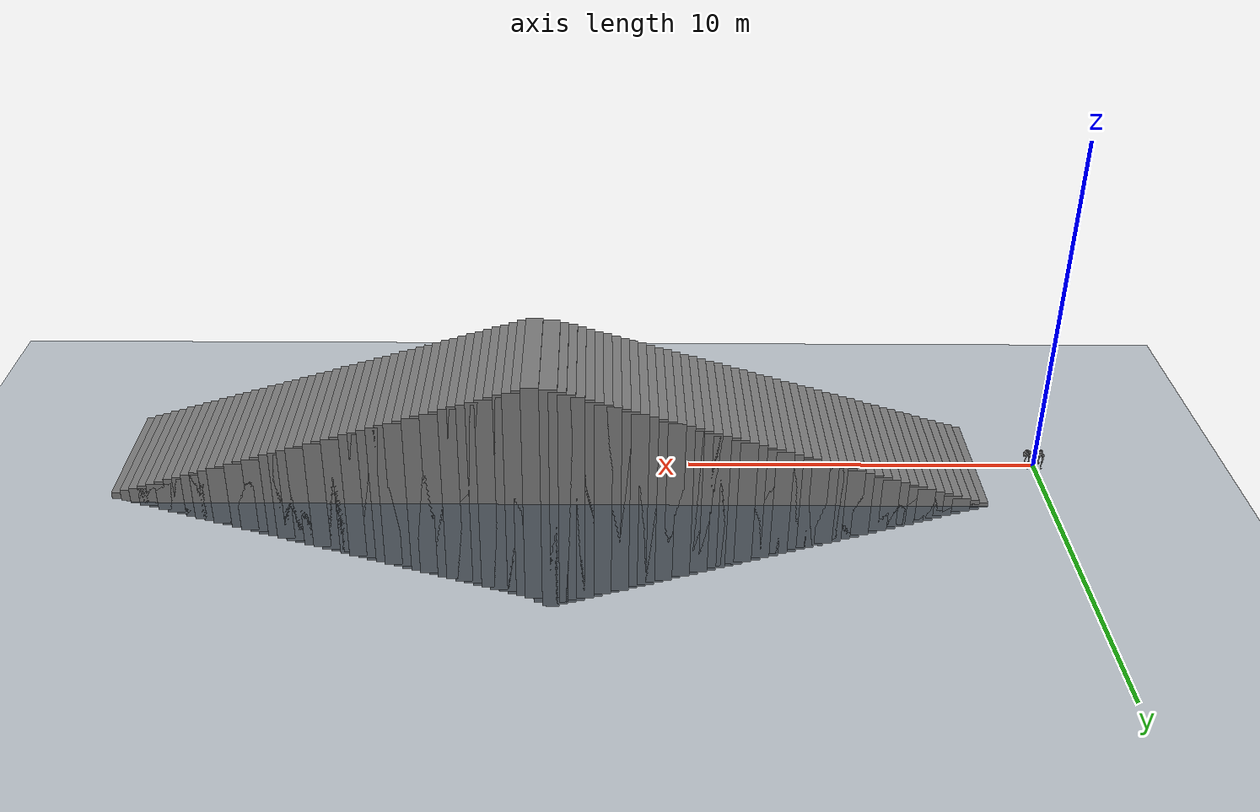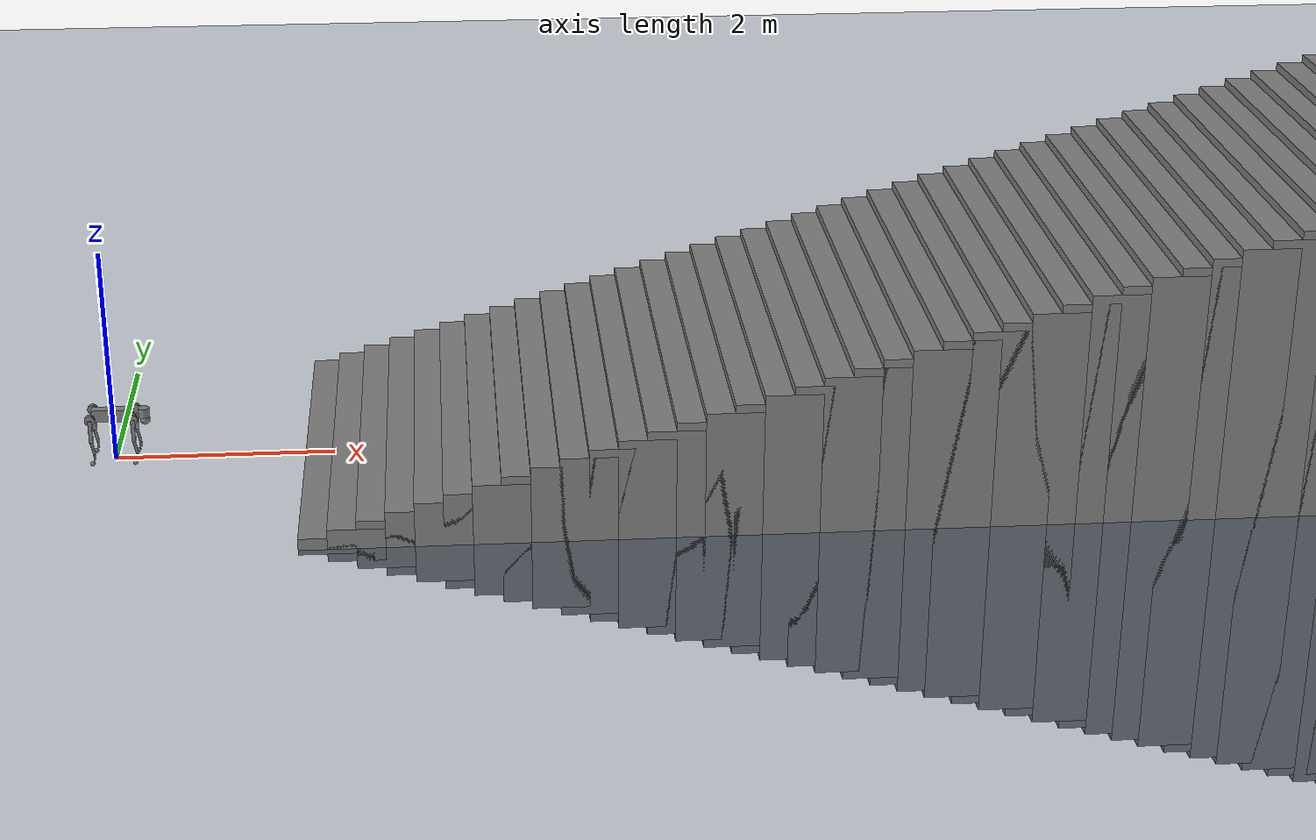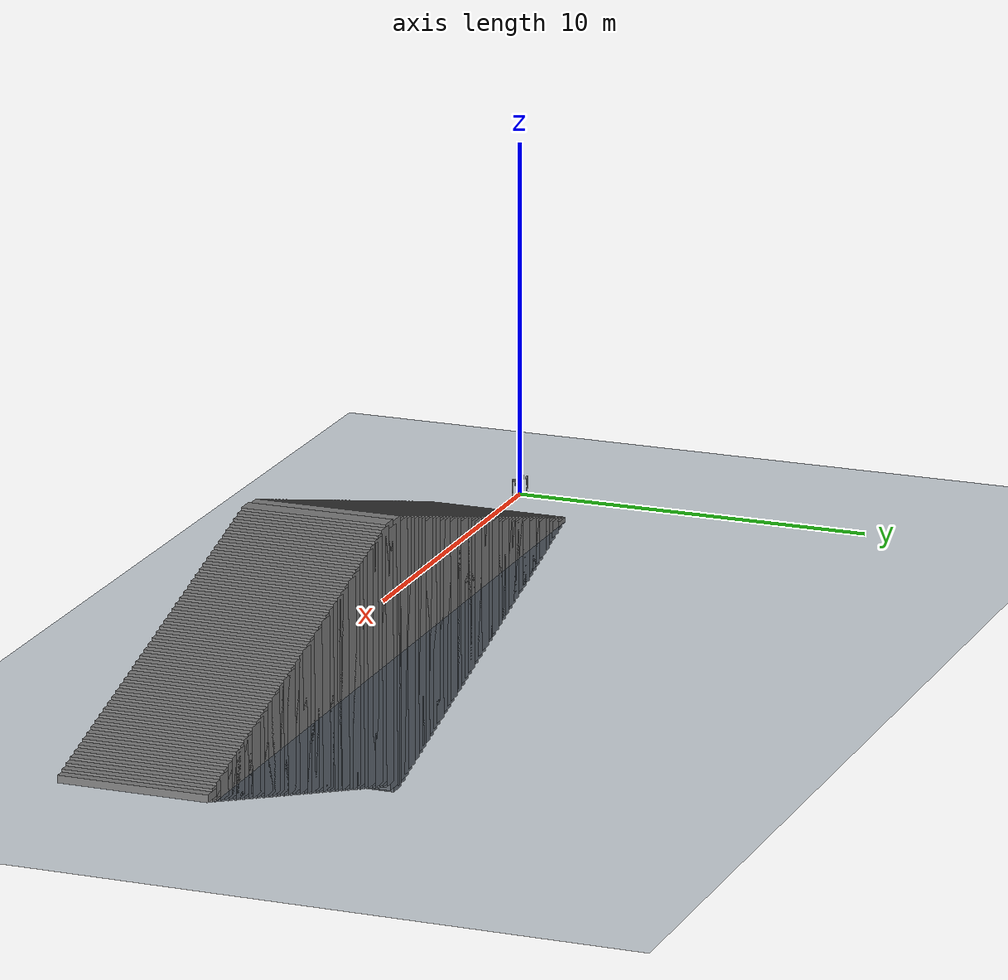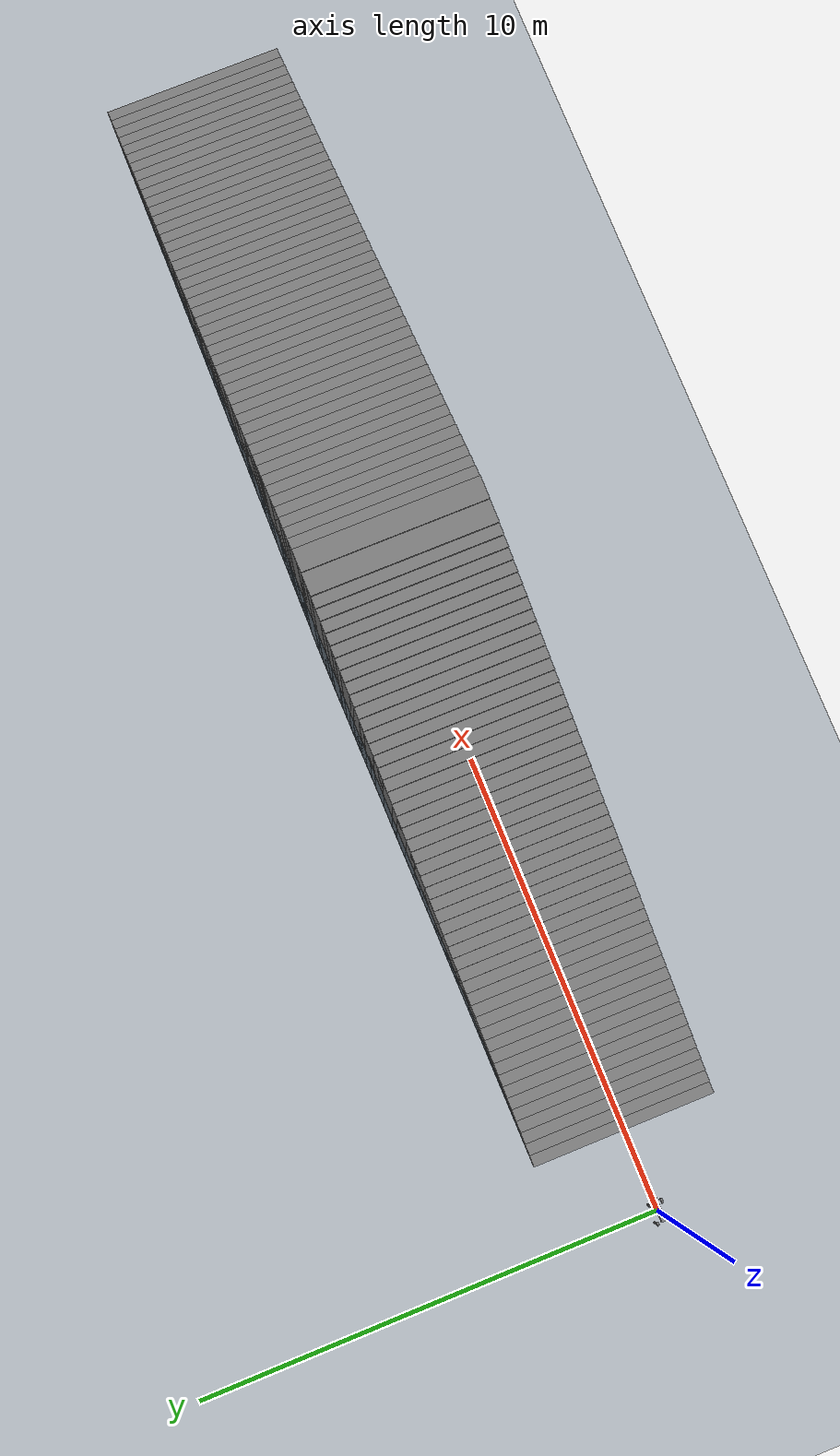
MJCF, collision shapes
<mujoco model="smaller stairway to heaven">
  <include file="go2.xml"/>

  <statistic center="0 0 0.1" extent="0.8"/>

  <visual>
    <headlight diffuse="0.6 0.6 0.6" ambient="0.3 0.3 0.3" specular="0 0 0"/>
    <rgba haze="0.15 0.25 0.35 1"/>
    <global azimuth="-130" elevation="-20"/>
  </visual>

  <asset>
    <texture type="skybox" builtin="gradient" rgb1="0.3 0.5 0.7" rgb2="0 0 0" width="512" height="3072"/>
    <texture type="2d" name="groundplane" builtin="checker" mark="edge" rgb1="0.2 0.3 0.4" rgb2="0.1 0.2 0.3"
      markrgb="0.8 0.8 0.8" width="300" height="300"/>
    <material name="groundplane" texture="groundplane" texuniform="true" texrepeat="5 5" reflectance="0.2"/>
  </asset>

  <worldbody>
    <light pos="0 0 1.5" dir="0 0 -1" directional="true"/>
    <geom name="floor" size="0 0 0.05" type="plane" material="groundplane"/>

    <!-- Bumpy wumpys -->

    <!-- The go2 ascends the stairway to heaven, -->
    <geom pos="2.00 0.0 0.02" type="box" size="0.25 2.0 0.075" quat="1.0 0 0 0"/>
    <geom pos="2.25 0.0 0.02" type="box" size="0.25 2.0 0.15"  quat="1.0 0 0 0"/>
    <geom pos="2.50 0.0 0.02" type="box" size="0.25 2.0 0.225" quat="1.0 0 0 0"/>
    <geom pos="2.75 0.0 0.02" type="box" size="0.25 2.0 0.30"  quat="1.0 0 0 0"/>
    <geom pos="3.00 0.0 0.02" type="box" size="0.25 2.0 0.375" quat="1.0 0 0 0"/>
    <geom pos="3.25 0.0 0.02" type="box" size="0.25 2.0 0.45"  quat="1.0 0 0 0"/>
    <geom pos="3.50 0.0 0.02" type="box" size="0.25 2.0 0.525" quat="1.0 0 0 0"/>
    <geom pos="3.75 0.0 0.02" type="box" size="0.25 2.0 0.600" quat="1.0 0 0 0"/>
    <geom pos="4.00 0.0 0.02" type="box" size="0.25 2.0 0.675" quat="1.0 0 0 0"/>
    <geom pos="4.25 0.0 0.02" type="box" size="0.25 2.0 0.75"  quat="1.0 0 0 0"/>
    <geom pos="4.50 0.0 0.02" type="box" size="0.25 2.0 0.825" quat="1.0 0 0 0"/>
    <geom pos="4.75 0.0 0.02" type="box" size="0.25 2.0 0.90"  quat="1.0 0 0 0"/>
    <geom pos="5.00 0.0 0.02" type="box" size="0.25 2.0 0.975" quat="1.0 0 0 0"/>
    <geom pos="5.25 0.0 0.02" type="box" size="0.25 2.0 1.05"  quat="1.0 0 0 0"/>
    <geom pos="5.50 0.0 0.02" type="box" size="0.25 2.0 1.125" quat="1.0 0 0 0"/>
    <geom pos="5.75 0.0 0.02" type="box" size="0.25 2.0 1.2"  quat="1.0 0 0 0"/>
    <geom pos="6.00 0.0 0.02" type="box" size="0.25 2.0 1.275" quat="1.0 0 0 0"/>
    <geom pos="6.25 0.0 0.02" type="box" size="0.25 2.0 1.35"  quat="1.0 0 0 0"/>
    <geom pos="6.50 0.0 0.02" type="box" size="0.25 2.0 1.425" quat="1.0 0 0 0"/>
    <geom pos="6.75 0.0 0.02" type="box" size="0.25 2.0 1.5"  quat="1.0 0 0 0"/>
    <geom pos="7.00 0.0 0.02" type="box" size="0.25 2.0 1.575" quat="1.0 0 0 0"/>
    <geom pos="7.25 0.0 0.02" type="box" size="0.25 2.0 1.65"  quat="1.0 0 0 0"/>
    <geom pos="7.50 0.0 0.02" type="box" size="0.25 2.0 1.725" quat="1.0 0 0 0"/>
    <geom pos="7.75 0.0 0.02" type="box" size="0.25 2.0 1.8"  quat="1.0 0 0 0"/>
    <geom pos="8.00 0.0 0.02" type="box" size="0.25 2.0 1.875" quat="1.0 0 0 0"/>
    <geom pos="8.25 0.0 0.02" type="box" size="0.25 2.0 1.95"  quat="1.0 0 0 0"/>
    <geom pos="8.50 0.0 0.02" type="box" size="0.25 2.0 2.025" quat="1.0 0 0 0"/>
    <geom pos="8.75 0.0 0.02" type="box" size="0.25 2.0 2.1"   quat="1.0 0 0 0"/>
    <geom pos="9.00 0.0 0.02" type="box" size="0.25 2.0 2.175" quat="1.0 0 0 0"/>
    <geom pos="9.25 0.0 0.02" type="box" size="0.25 2.0 2.25"  quat="1.0 0 0 0"/>
    <geom pos="9.50 0.0 0.02" type="box" size="0.25 2.0 2.325" quat="1.0 0 0 0"/>
    <geom pos="9.75 0.0 0.02" type="box" size="0.25 2.0 2.4"   quat="1.0 0 0 0"/>
    <geom pos="10.00 0.0 0.02" type="box" size="0.25 2.0 2.475" quat="1.0 0 0 0"/>
    <geom pos="10.25 0.0 0.02" type="box" size="0.25 2.0 2.55"  quat="1.0 0 0 0"/>
    <geom pos="10.50 0.0 0.02" type="box" size="0.25 2.0 2.625" quat="1.0 0 0 0"/>
    <geom pos="10.75 0.0 0.02" type="box" size="0.25 2.0 2.7"   quat="1.0 0 0 0"/>
    <geom pos="11.00 0.0 0.02" type="box" size="0.25 2.0 2.775" quat="1.0 0 0 0"/>
    <geom pos="11.25 0.0 0.02" type="box" size="0.25 2.0 2.85"  quat="1.0 0 0 0"/>
    <geom pos="11.50 0.0 0.02" type="box" size="0.25 2.0 2.925" quat="1.0 0 0 0"/>
    <geom pos="11.75 0.0 0.02" type="box" size="0.25 2.0 3.0"   quat="1.0 0 0 0"/>
    <geom pos="12.00 0.0 0.02" type="box" size="0.25 2.0 3.075" quat="1.0 0 0 0"/>
    <geom pos="12.25 0.0 0.02" type="box" size="0.25 2.0 3.15"  quat="1.0 0 0 0"/>
    <geom pos="12.50 0.0 0.02" type="box" size="0.25 2.0 3.225" quat="1.0 0 0 0"/>
    <geom pos="12.75 0.0 0.02" type="box" size="0.25 2.0 3.30"  quat="1.0 0 0 0"/>
    <geom pos="13.00 0.0 0.02" type="box" size="0.25 2.0 3.375" quat="1.0 0 0 0"/>
    <geom pos="13.25 0.0 0.02" type="box" size="0.25 2.0 3.45"  quat="1.0 0 0 0"/>
    <geom pos="13.50 0.0 0.02" type="box" size="0.25 2.0 3.525" quat="1.0 0 0 0"/>
    <geom pos="13.75 0.0 0.02" type="box" size="0.25 2.0 3.60"  quat="1.0 0 0 0"/>
    <geom pos="14.00 0.0 0.02" type="box" size="0.25 2.0 3.675" quat="1.0 0 0 0"/>
    <geom pos="14.25 0.0 0.02" type="box" size="0.25 2.0 3.55"  quat="1.0 0 0 0"/>

    <!-- Yet heaven refuses the creation of man. -->

    <!-- Thus, he falls back to Earth. -->
    <geom pos="14.50 0.0 0.2" type="box" size="0.25 2.0 3.55"  quat="1.0 0 0 0"/>
    <geom pos="14.75 0.0 0.2" type="box" size="0.25 2.0 3.475" quat="1.0 0 0 0"/>
    <geom pos="15.00 0.0 0.2" type="box" size="0.25 2.0 3.40"  quat="1.0 0 0 0"/>
    <geom pos="15.25 0.0 0.2" type="box" size="0.25 2.0 3.325" quat="1.0 0 0 0"/>
    <geom pos="15.50 0.0 0.2" type="box" size="0.25 2.0 3.25"  quat="1.0 0 0 0"/>
    <geom pos="15.75 0.0 0.2" type="box" size="0.25 2.0 3.175" quat="1.0 0 0 0"/>
    <geom pos="16.00 0.0 0.2" type="box" size="0.25 2.0 3.10"  quat="1.0 0 0 0"/>
    <geom pos="16.25 0.0 0.2" type="box" size="0.25 2.0 3.025" quat="1.0 0 0 0"/>
    <geom pos="16.50 0.0 0.2" type="box" size="0.25 2.0 2.95"  quat="1.0 0 0 0"/>
    <geom pos="16.75 0.0 0.2" type="box" size="0.25 2.0 2.875" quat="1.0 0 0 0"/>
    <geom pos="17.00 0.0 0.2" type="box" size="0.25 2.0 2.80"  quat="1.0 0 0 0"/>
    <geom pos="17.25 0.0 0.2" type="box" size="0.25 2.0 2.725" quat="1.0 0 0 0"/>
    <geom pos="17.50 0.0 0.2" type="box" size="0.25 2.0 2.65"  quat="1.0 0 0 0"/>
    <geom pos="17.75 0.0 0.2" type="box" size="0.25 2.0 2.575" quat="1.0 0 0 0"/>
    <geom pos="18.00 0.0 0.2" type="box" size="0.25 2.0 2.50"  quat="1.0 0 0 0"/>
    <geom pos="18.25 0.0 0.2" type="box" size="0.25 2.0 2.425" quat="1.0 0 0 0"/>
    <geom pos="18.50 0.0 0.2" type="box" size="0.25 2.0 2.35"  quat="1.0 0 0 0"/>
    <geom pos="18.75 0.0 0.2" type="box" size="0.25 2.0 2.275" quat="1.0 0 0 0"/>
    <geom pos="19.00 0.0 0.2" type="box" size="0.25 2.0 2.20"  quat="1.0 0 0 0"/>
    <geom pos="19.25 0.0 0.2" type="box" size="0.25 2.0 2.125" quat="1.0 0 0 0"/>
    <geom pos="19.50 0.0 0.2" type="box" size="0.25 2.0 2.05"  quat="1.0 0 0 0"/>
    <geom pos="19.75 0.0 0.2" type="box" size="0.25 2.0 1.975" quat="1.0 0 0 0"/>
    <geom pos="20.00 0.0 0.2" type="box" size="0.25 2.0 1.90"  quat="1.0 0 0 0"/>
    <geom pos="20.25 0.0 0.2" type="box" size="0.25 2.0 1.825" quat="1.0 0 0 0"/>
    <geom pos="20.50 0.0 0.2" type="box" size="0.25 2.0 1.75"  quat="1.0 0 0 0"/>
    <geom pos="20.75 0.0 0.2" type="box" size="0.25 2.0 1.675" quat="1.0 0 0 0"/>
    <geom pos="21.00 0.0 0.2" type="box" size="0.25 2.0 1.60"  quat="1.0 0 0 0"/>
    <geom pos="21.25 0.0 0.2" type="box" size="0.25 2.0 1.525" quat="1.0 0 0 0"/>
    <geom pos="21.50 0.0 0.2" type="box" size="0.25 2.0 1.45"  quat="1.0 0 0 0"/>
    <geom pos="21.75 0.0 0.2" type="box" size="0.25 2.0 1.375" quat="1.0 0 0 0"/>
    <geom pos="22.00 0.0 0.2" type="box" size="0.25 2.0 1.30"  quat="1.0 0 0 0"/>
    <geom pos="22.25 0.0 0.2" type="box" size="0.25 2.0 1.225" quat="1.0 0 0 0"/>
    <geom pos="22.50 0.0 0.2" type="box" size="0.25 2.0 1.15"  quat="1.0 0 0 0"/>
    <geom pos="22.75 0.0 0.2" type="box" size="0.25 2.0 1.075" quat="1.0 0 0 0"/>
    <geom pos="23.00 0.0 0.2" type="box" size="0.25 2.0 1.00"  quat="1.0 0 0 0"/>
    <geom pos="23.25 0.0 0.2" type="box" size="0.25 2.0 0.925" quat="1.0 0 0 0"/>
    <geom pos="23.50 0.0 0.2" type="box" size="0.25 2.0 0.85"  quat="1.0 0 0 0"/>
    <geom pos="23.75 0.0 0.2" type="box" size="0.25 2.0 0.775" quat="1.0 0 0 0"/>
    <geom pos="24.00 0.0 0.2" type="box" size="0.25 2.0 0.70"  quat="1.0 0 0 0"/>
    <geom pos="24.25 0.0 0.2" type="box" size="0.25 2.0 0.625" quat="1.0 0 0 0"/>
    <geom pos="24.50 0.0 0.2" type="box" size="0.25 2.0 0.55"  quat="1.0 0 0 0"/>
    <geom pos="24.75 0.0 0.2" type="box" size="0.25 2.0 0.475" quat="1.0 0 0 0"/>
    <geom pos="25.00 0.0 0.2" type="box" size="0.25 2.0 0.40"  quat="1.0 0 0 0"/>
    <geom pos="25.25 0.0 0.2" type="box" size="0.25 2.0 0.325" quat="1.0 0 0 0"/>
    <geom pos="25.50 0.0 0.2" type="box" size="0.25 2.0 0.25"  quat="1.0 0 0 0"/>
    <geom pos="25.75 0.0 0.2" type="box" size="0.25 2.0 0.175" quat="1.0 0 0 0"/>
    <geom pos="26.00 0.0 0.2" type="box" size="0.25 2.0 0.10"  quat="1.0 0 0 0"/>

  </worldbody>
</mujoco>

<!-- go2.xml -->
<mujoco model="go2">
  <compiler angle="radian" meshdir="assets" autolimits="true" />

  <option cone="elliptic" impratio="100" />

  <default>
    <default class="go2">
      <geom friction="0.4" margin="0.001" condim="1"/>
      <joint axis="0 1 0" damping="0.1" armature="0.01" frictionloss="0.2"/>
      <motor ctrlrange="-23.7 23.7"/>
      <default class="abduction">
        <joint axis="1 0 0" range="-1.0472 1.0472"/>
      </default>
      <default class="hip">
        <default class="front_hip">
          <joint range="-1.5708 3.4907"/>
        </default>
        <default class="back_hip">
          <joint range="-0.5236 4.5379"/>
        </default>
      </default>
      <default class="knee">
        <joint range="-2.7227 -0.83776"/>
        <motor ctrlrange="-45.43 45.43"/>
      </default>
      <default class="visual">
        <geom type="mesh" contype="0" conaffinity="0" group="2"/>
      </default>
      <default class="collision">
        <geom group="3"/>
        <default class="foot">

          <!-- DEFAULT FRICTION (UNITREE) -->

          <!-- DEFAULT FRICTION (MUJOCO) -->

          <!-- SELECTED FRICTION (USER) -->
          <geom size="0.022" pos="-0.002 0 -0.213" priority="1" condim="6"
            friction="0.7 0.02 0.01"/>

        </default>
      </default>
    </default>
  </default>

  <asset>
    <material name="metal" rgba=".9 .95 .95 1" />
    <material name="black" rgba="0 0 0 1" />
    <material name="white" rgba="1 1 1 1" />
    <material name="gray" rgba="0.671705 0.692426 0.774270 1" />

    <mesh file="base_0.obj" />
    <mesh file="base_1.obj" />
    <mesh file="base_2.obj" />
    <mesh file="base_3.obj" />
    <mesh file="base_4.obj" />
    <mesh file="hip_0.obj" />
    <mesh file="hip_1.obj" />
    <mesh file="thigh_0.obj" />
    <mesh file="thigh_1.obj" />
    <mesh file="thigh_mirror_0.obj" />
    <mesh file="thigh_mirror_1.obj" />
    <mesh file="calf_0.obj" />
    <mesh file="calf_1.obj" />
    <mesh file="calf_mirror_0.obj" />
    <mesh file="calf_mirror_1.obj" />
    <mesh file="foot.obj" />
  </asset>

  <worldbody>
    <body name="base_link" pos="0 0 0.445" childclass="go2">
      <inertial pos="0.021112 0 -0.005366" quat="-0.000543471 0.713435 -0.00173769 0.700719"
        mass="6.921"
        diaginertia="0.107027 0.0980771 0.0244531" />
      <freejoint />
      <geom mesh="base_0" material="black" class="visual" />
      <geom mesh="base_1" material="black" class="visual" />
      <geom mesh="base_2" material="black" class="visual" />
      <geom mesh="base_3" material="white" class="visual" />
      <geom mesh="base_4" material="gray" class="visual" />
      <geom size="0.1881 0.04675 0.057" type="box" class="collision" />
      <geom size="0.05 0.045" pos="0.285 0 0.01" type="cylinder" class="collision" />
      <geom size="0.047" pos="0.293 0 -0.06" class="collision" />
      <site name="imu" pos="-0.02557 0 0.04232" />
      <body name="FL_hip" pos="0.1934 0.0465 0">
        <inertial pos="-0.0054 0.00194 -0.000105" quat="0.497014 0.499245 0.505462 0.498237"
          mass="0.678"
          diaginertia="0.00088403 0.000596003 0.000479967" />
        <joint name="FL_hip_joint" class="abduction" />
        <geom mesh="hip_0" material="metal" class="visual" />
        <geom mesh="hip_1" material="gray" class="visual" />
        <geom size="0.046 0.02" pos="0 0.08 0" quat="1 1 0 0" type="cylinder" class="collision" />
        <body name="FL_thigh" pos="0 0.0955 0">
          <inertial pos="-0.00374 -0.0223 -0.0327" quat="0.829533 0.0847635 -0.0200632 0.551623"
            mass="1.152"
            diaginertia="0.00594973 0.00584149 0.000878787" />
          <joint name="FL_thigh_joint" class="front_hip" />
          <geom mesh="thigh_0" material="metal" class="visual" />
          <geom mesh="thigh_1" material="gray" class="visual" />
          <geom size="0.1065 0.01225 0.017" pos="0 0 -0.1065" quat="0.707107 0 0.707107 0"
            type="box" class="collision" />
          <body name="FL_calf" pos="0 0 -0.213">
            <inertial pos="0.00629595 -0.000622121 -0.141417"
              quat="0.710672 0.00154099 -0.00450087 0.703508"
              mass="0.241352" diaginertia="0.0014901 0.00146356 5.31397e-05" />
            <joint name="FL_calf_joint" class="knee" />
            <geom mesh="calf_0" material="gray" class="visual" />
            <geom mesh="calf_1" material="black" class="visual" />
            <geom size="0.012 0.06" pos="0.008 0 -0.06" quat="0.994493 0 -0.104807 0"
              type="cylinder" class="collision" />
            <geom size="0.011 0.0325" pos="0.02 0 -0.148" quat="0.999688 0 0.0249974 0"
              type="cylinder" class="collision" />
            <geom pos="0 0 -0.213" mesh="foot" class="visual" material="black" />
            <geom name="FL" class="foot" />
            <body name="FL_foot" pos="0 0 -0.213" />
          </body>
        </body>
      </body>
      <body name="FR_hip" pos="0.1934 -0.0465 0">
        <inertial pos="-0.0054 -0.00194 -0.000105" quat="0.498237 0.505462 0.499245 0.497014"
          mass="0.678"
          diaginertia="0.00088403 0.000596003 0.000479967" />
        <joint name="FR_hip_joint" class="abduction" />
        <geom mesh="hip_0" material="metal" class="visual" quat="4.63268e-05 1 0 0" />
        <geom mesh="hip_1" material="gray" class="visual" quat="4.63268e-05 1 0 0" />
        <geom size="0.046 0.02" pos="0 -0.08 0" quat="0.707107 0.707107 0 0" type="cylinder"
          class="collision" />
        <body name="FR_thigh" pos="0 -0.0955 0">
          <inertial pos="-0.00374 0.0223 -0.0327" quat="0.551623 -0.0200632 0.0847635 0.829533"
            mass="1.152"
            diaginertia="0.00594973 0.00584149 0.000878787" />
          <joint name="FR_thigh_joint" class="front_hip" />
          <geom mesh="thigh_mirror_0" material="metal" class="visual" />
          <geom mesh="thigh_mirror_1" material="gray" class="visual" />
          <geom size="0.1065 0.01225 0.017" pos="0 0 -0.1065" quat="0.707107 0 0.707107 0"
            type="box" class="collision" />
          <body name="FR_calf" pos="0 0 -0.213">
            <inertial pos="0.00629595 0.000622121 -0.141417"
              quat="0.703508 -0.00450087 0.00154099 0.710672"
              mass="0.241352" diaginertia="0.0014901 0.00146356 5.31397e-05" />
            <joint name="FR_calf_joint" class="knee" />
            <geom mesh="calf_mirror_0" material="gray" class="visual" />
            <geom mesh="calf_mirror_1" material="black" class="visual" />
            <geom size="0.013 0.06" pos="0.01 0 -0.06" quat="0.995004 0 -0.0998334 0"
              type="cylinder" class="collision" />
            <geom size="0.011 0.0325" pos="0.02 0 -0.148" quat="0.999688 0 0.0249974 0"
              type="cylinder" class="collision" />
            <geom pos="0 0 -0.213" mesh="foot" class="visual" material="black" />
            <geom name="FR" class="foot" />
            <body name="FR_foot" pos="0 0 -0.213" />
          </body>
        </body>
      </body>
      <body name="RL_hip" pos="-0.1934 0.0465 0">
        <inertial pos="0.0054 0.00194 -0.000105" quat="0.505462 0.498237 0.497014 0.499245"
          mass="0.678"
          diaginertia="0.00088403 0.000596003 0.000479967" />
        <joint name="RL_hip_joint" class="abduction" />
        <geom mesh="hip_0" material="metal" class="visual" quat="4.63268e-05 0 1 0" />
        <geom mesh="hip_1" material="gray" class="visual" quat="4.63268e-05 0 1 0" />
        <geom size="0.046 0.02" pos="0 0.08 0" quat="0.707107 0.707107 0 0" type="cylinder"
          class="collision" />
        <body name="RL_thigh" pos="0 0.0955 0">
          <inertial pos="-0.00374 -0.0223 -0.0327" quat="0.829533 0.0847635 -0.0200632 0.551623"
            mass="1.152"
            diaginertia="0.00594973 0.00584149 0.000878787" />
          <joint name="RL_thigh_joint" class="back_hip" />
          <geom mesh="thigh_0" material="metal" class="visual" />
          <geom mesh="thigh_1" material="gray" class="visual" />
          <geom size="0.1065 0.01225 0.017" pos="0 0 -0.1065" quat="0.707107 0 0.707107 0"
            type="box" class="collision" />
          <body name="RL_calf" pos="0 0 -0.213">
            <inertial pos="0.00629595 -0.000622121 -0.141417"
              quat="0.710672 0.00154099 -0.00450087 0.703508"
              mass="0.241352" diaginertia="0.0014901 0.00146356 5.31397e-05" />
            <joint name="RL_calf_joint" class="knee" />
            <geom mesh="calf_0" material="gray" class="visual" />
            <geom mesh="calf_1" material="black" class="visual" />
            <geom size="0.013 0.06" pos="0.01 0 -0.06" quat="0.995004 0 -0.0998334 0"
              type="cylinder" class="collision" />
            <geom size="0.011 0.0325" pos="0.02 0 -0.148" quat="0.999688 0 0.0249974 0"
              type="cylinder" class="collision" />
            <geom pos="0 0 -0.213" mesh="foot" class="visual" material="black" />
            <geom name="RL" class="foot" />
            <body name="RL_foot" pos="0 0 -0.213" />
          </body>
        </body>
      </body>
      <body name="RR_hip" pos="-0.1934 -0.0465 0">
        <inertial pos="0.0054 -0.00194 -0.000105" quat="0.499245 0.497014 0.498237 0.505462"
          mass="0.678"
          diaginertia="0.00088403 0.000596003 0.000479967" />
        <joint name="RR_hip_joint" class="abduction" />
        <geom mesh="hip_0" material="metal" class="visual"
          quat="2.14617e-09 4.63268e-05 4.63268e-05 -1" />
        <geom mesh="hip_1" material="gray" class="visual"
          quat="2.14617e-09 4.63268e-05 4.63268e-05 -1" />
        <geom size="0.046 0.02" pos="0 -0.08 0" quat="0.707107 0.707107 0 0" type="cylinder"
          class="collision" />
        <body name="RR_thigh" pos="0 -0.0955 0">
          <inertial pos="-0.00374 0.0223 -0.0327" quat="0.551623 -0.0200632 0.0847635 0.829533"
            mass="1.152"
            diaginertia="0.00594973 0.00584149 0.000878787" />
          <joint name="RR_thigh_joint" class="back_hip" />
          <geom mesh="thigh_mirror_0" material="metal" class="visual" />
          <geom mesh="thigh_mirror_1" material="gray" class="visual" />
          <geom size="0.1065 0.01225 0.017" pos="0 0 -0.1065" quat="0.707107 0 0.707107 0"
            type="box" class="collision" />
          <body name="RR_calf" pos="0 0 -0.213">
            <inertial pos="0.00629595 0.000622121 -0.141417"
              quat="0.703508 -0.00450087 0.00154099 0.710672"
              mass="0.241352" diaginertia="0.0014901 0.00146356 5.31397e-05" />
            <joint name="RR_calf_joint" class="knee" />
            <geom mesh="calf_mirror_0" material="gray" class="visual" />
            <geom mesh="calf_mirror_1" material="black" class="visual" />
            <geom size="0.013 0.06" pos="0.01 0 -0.06" quat="0.995004 0 -0.0998334 0"
              type="cylinder" class="collision" />
            <geom size="0.011 0.0325" pos="0.02 0 -0.148" quat="0.999688 0 0.0249974 0"
              type="cylinder" class="collision" />
            <geom pos="0 0 -0.213" mesh="foot" class="visual" material="black" />
            <geom name="RR" class="foot" />
            <body name="RR_foot" pos="0 0 -0.213" />
          </body>
        </body>
      </body>
    </body>
  </worldbody>

  <actuator>
    <motor class="abduction" name="FL_hip" joint="FL_hip_joint" />
    <motor class="hip" name="FL_thigh" joint="FL_thigh_joint" />
    <motor class="knee" name="FL_calf" joint="FL_calf_joint" />
    <motor class="abduction" name="FR_hip" joint="FR_hip_joint" />
    <motor class="hip" name="FR_thigh" joint="FR_thigh_joint" />
    <motor class="knee" name="FR_calf" joint="FR_calf_joint" />
    <motor class="abduction" name="RL_hip" joint="RL_hip_joint" />
    <motor class="hip" name="RL_thigh" joint="RL_thigh_joint" />
    <motor class="knee" name="RL_calf" joint="RL_calf_joint" />
    <motor class="abduction" name="RR_hip" joint="RR_hip_joint" />
    <motor class="hip" name="RR_thigh" joint="RR_thigh_joint" />
    <motor class="knee" name="RR_calf" joint="RR_calf_joint" />
  </actuator>

  <sensor>
    <jointpos name="FL_hip_pos" joint="FL_hip_joint" />
    <jointpos name="FL_thigh_pos" joint="FL_thigh_joint" />
    <jointpos name="FL_calf_pos" joint="FL_calf_joint" />
    <jointpos name="FR_hip_pos" joint="FR_hip_joint" />
    <jointpos name="FR_thigh_pos" joint="FR_thigh_joint" />
    <jointpos name="FR_calf_pos" joint="FR_calf_joint" />
    <jointpos name="RL_hip_pos" joint="RL_hip_joint" />
    <jointpos name="RL_thigh_pos" joint="RL_thigh_joint" />
    <jointpos name="RL_calf_pos" joint="RL_calf_joint" />
    <jointpos name="RR_hip_pos" joint="RR_hip_joint" />
    <jointpos name="RR_thigh_pos" joint="RR_thigh_joint" />
    <jointpos name="RR_calf_pos" joint="RR_calf_joint" />

    <jointvel name="FL_hip_vel" joint="FL_hip_joint" />
    <jointvel name="FL_thigh_vel" joint="FL_thigh_joint" />
    <jointvel name="FL_calf_vel" joint="FL_calf_joint" />
    <jointvel name="FR_hip_vel" joint="FR_hip_joint" />
    <jointvel name="FR_thigh_vel" joint="FR_thigh_joint" />
    <jointvel name="FR_calf_vel" joint="FR_calf_joint" />
    <jointvel name="RL_hip_vel" joint="RL_hip_joint" />
    <jointvel name="RL_thigh_vel" joint="RL_thigh_joint" />
    <jointvel name="RL_calf_vel" joint="RL_calf_joint" />
    <jointvel name="RR_hip_vel" joint="RR_hip_joint" />
    <jointvel name="RR_thigh_vel" joint="RR_thigh_joint" />
    <jointvel name="RR_calf_vel" joint="RR_calf_joint" />

    <jointactuatorfrc name="FL_hip_torque" joint="FL_hip_joint" noise="0.01" />
    <jointactuatorfrc name="FL_thigh_torque" joint="FL_thigh_joint" noise="0.01" />
    <jointactuatorfrc name="FL_calf_torque" joint="FL_calf_joint" noise="0.01" />
    <jointactuatorfrc name="FR_hip_torque" joint="FR_hip_joint" noise="0.01" />
    <jointactuatorfrc name="FR_thigh_torque" joint="FR_thigh_joint" noise="0.01" />
    <jointactuatorfrc name="FR_calf_torque" joint="FR_calf_joint" noise="0.01" />
    <jointactuatorfrc name="RL_hip_torque" joint="RL_hip_joint" noise="0.01" />
    <jointactuatorfrc name="RL_thigh_torque" joint="RL_thigh_joint" noise="0.01" />
    <jointactuatorfrc name="RL_calf_torque" joint="RL_calf_joint" noise="0.01" />
    <jointactuatorfrc name="RR_hip_torque" joint="RR_hip_joint" noise="0.01" />
    <jointactuatorfrc name="RR_thigh_torque" joint="RR_thigh_joint" noise="0.01" />
    <jointactuatorfrc name="RR_calf_torque" joint="RR_calf_joint" noise="0.01" />

    <framequat name="imu_quat" objtype="site" objname="imu" />
    <gyro name="imu_gyro" site="imu" />
    <accelerometer name="imu_acc" site="imu" />

    <framepos name="frame_pos" objtype="site" objname="imu" />
    <framelinvel name="frame_vel" objtype="site" objname="imu" />
  </sensor>

  <keyframe>
    <key name="home" qpos="0 0 0.27 1 0 0 0 0 0.9 -1.8 0 0.9 -1.8 0 0.9 -1.8 0 0.9 -1.8"
      ctrl="0 0.9 -1.8 0 0.9 -1.8 0 0.9 -1.8 0 0.9 -1.8" />
  </keyframe>
</mujoco>
